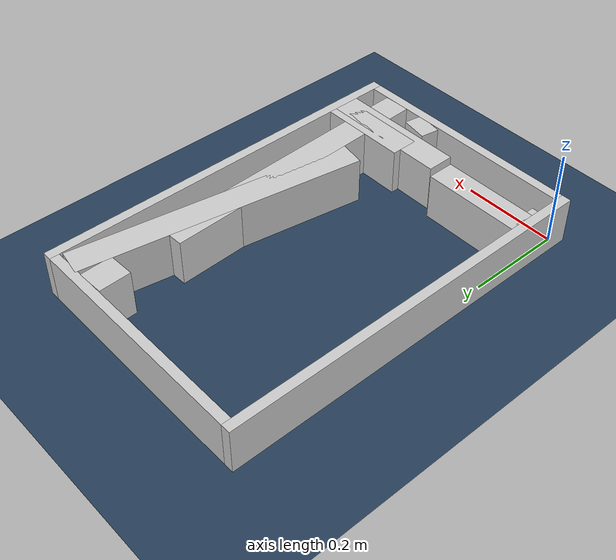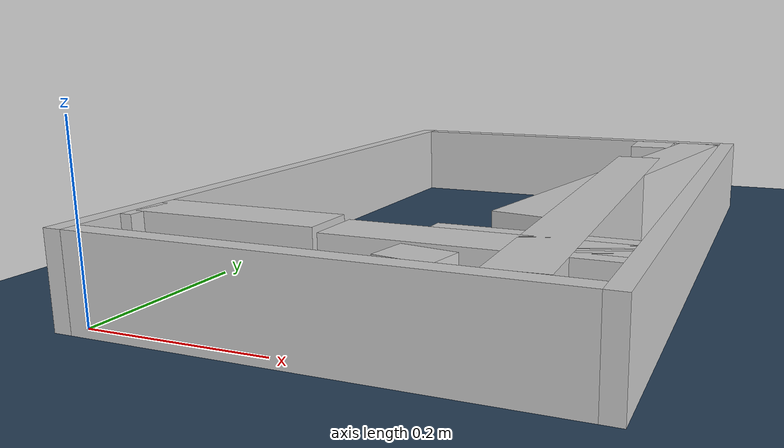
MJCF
<?xml version="1.0" ?>
<mujoco model="generated_real_template">
  <compiler angle="degree"/>
  <option timestep="0.002" integrator="implicitfast" iterations="100" cone="elliptic"/>
  <default>
    <geom density="1"/>
  </default>
  <asset>
    <texture builtin="gradient" height="3072" rgb1="0.3 0.5 0.7" rgb2="0 0 0" type="skybox" width="512"/>
    <texture builtin="checker" height="300" mark="edge" markrgb="0.8 0.8 0.8" name="groundplane" rgb1="0.2 0.3 0.4" rgb2="0.1 0.2 0.3" type="2d" width="300"/>
    <material name="groundplane" reflectance="0.2" texrepeat="5 5" texture="groundplane" texuniform="true"/>
  </asset>
  <worldbody>
    <light dir="0 0 -1" directional="true" pos="0 0 1.5"/>
    <geom name="floor" type="plane" condim="4" friction="0.5 0.005 0.001" material="groundplane" size="0 0 0.05"/>
    <body name="walls">
      <geom name="wall_boundary_left" type="box" condim="4" friction="1.0 0.005 0.0001" rgba="0.8 0.8 0.8 1" pos="-0.010000 0.387500 0.050000" euler="0 0 0.000000" size="0.010000 0.407500 0.050000"/>
      <geom name="wall_boundary_right" type="box" condim="4" friction="1.0 0.005 0.0001" rgba="0.8 0.8 0.8 1" pos="0.500000 0.387500 0.050000" euler="0 0 0.000000" size="0.010000 0.407500 0.050000"/>
      <geom name="wall_boundary_bottom" type="box" condim="4" friction="1.0 0.005 0.0001" rgba="0.8 0.8 0.8 1" pos="0.245000 -0.010000 0.050000" euler="0 0 0.000000" size="0.245000 0.010000 0.050000"/>
      <geom name="wall_boundary_top" type="box" condim="4" friction="1.0 0.005 0.0001" rgba="0.8 0.8 0.8 1" pos="0.245000 0.785000 0.050000" euler="0 0 0.000000" size="0.245000 0.010000 0.050000"/>
      <geom name="wall_inner_1_1" type="box" condim="4" friction="1.0 0.005 0.0001" rgba="0.8 0.8 0.8 1" pos="0.329707 0.019657 0.050000" euler="0 0 80.255100" size="0.019944 0.028500 0.050000"/>
      <geom name="wall_inner_1_2" type="box" condim="4" friction="1.0 0.005 0.0001" rgba="0.8 0.8 0.8 1" pos="0.408938 0.480997 0.050000" euler="0 0 80.255100" size="0.298307 0.028500 0.050000"/>
      <geom name="wall_inner_2_1" type="box" condim="4" friction="1.0 0.005 0.0001" rgba="0.8 0.8 0.8 1" pos="0.409476 0.300062 0.050000" euler="0 0 92.087138" size="0.300261 0.028500 0.050000"/>
      <geom name="wall_inner_2_2" type="box" condim="4" friction="1.0 0.005 0.0001" rgba="0.8 0.8 0.8 1" pos="0.393378 0.741773 0.050000" euler="0 0 92.087138" size="0.033249 0.028500 0.050000"/>
      <geom name="wall_inner_3_1" type="box" condim="4" friction="1.0 0.005 0.0001" rgba="0.8 0.8 0.8 1" pos="0.006506 0.079666 0.050000" euler="0 0 0.000000" size="0.006506 0.028500 0.050000"/>
      <geom name="wall_inner_3_2" type="box" condim="4" friction="1.0 0.005 0.0001" rgba="0.8 0.8 0.8 1" pos="0.354912 0.079666 0.050000" euler="0 0 0.000000" size="0.135088 0.028500 0.050000"/>
      <geom name="wall_inner_4_1" type="box" condim="4" friction="1.0 0.005 0.0001" rgba="0.8 0.8 0.8 1" pos="0.102202 0.096368 0.050000" euler="0 0 0.000000" size="0.102202 0.028500 0.050000"/>
      <geom name="wall_inner_4_2" type="box" condim="4" friction="1.0 0.005 0.0001" rgba="0.8 0.8 0.8 1" pos="0.396361 0.096368 0.050000" euler="0 0 0.000000" size="0.093639 0.028500 0.050000"/>
    </body>
  </worldbody>
</mujoco>
